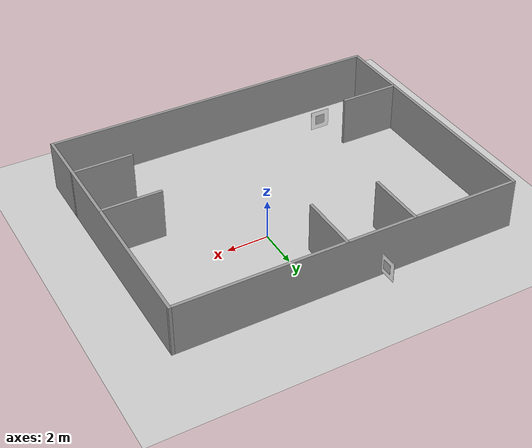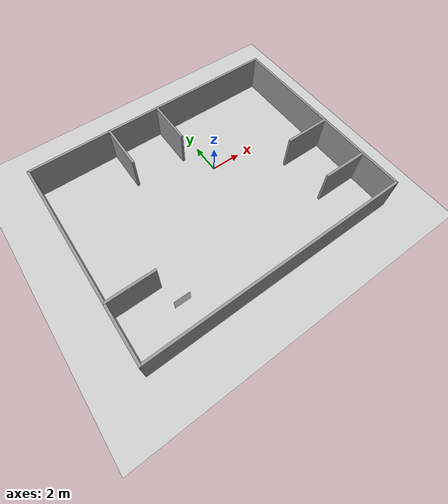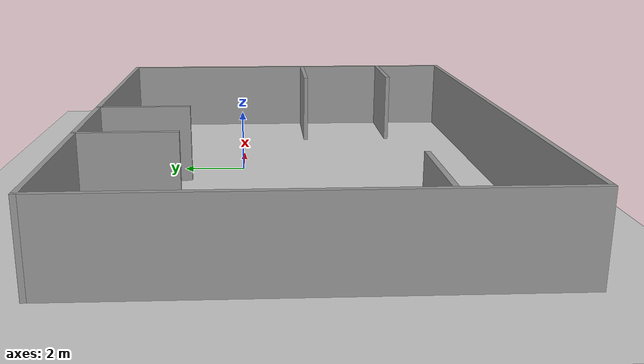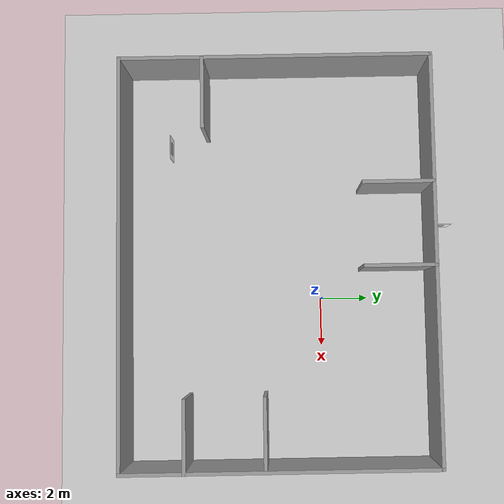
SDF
<sdf version="1.4">
 <world name="default">
  <scene><shadows>0</shadows></scene>
  <physics type="ode">
   <gravity>0 0 -9.81</gravity>
   <ode>
    <solver><type>quick</type><iters>20</iters><sor>1.0</sor></solver>
    <constraints>
     <cfm>0.0</cfm>
     <erp>0.2</erp>
     <contact_max_correcting_vel>100.0</contact_max_correcting_vel>
     <contact_surface_layer>0.0</contact_surface_layer>
    </constraints>
   </ode>
   <real_time_update_rate>200</real_time_update_rate>
   <max_step_size>0.001</max_step_size>
  </physics>
  <include><uri>model://sun</uri></include>
  <include><uri>model://ground_plane</uri><pose>0 0 -0.002 0 0 0</pose></include>
  <include><uri>model://walls3</uri><name>walls3</name></include>
  <include><uri>model://id2</uri><name>id2</name><pose>-6.57 -6.33 0.7 -1.57 0.0 0.0</pose></include>
  <include><uri>model://id3</uri><name>id3</name><pose>-3.04 5.06 0.7 -1.57 0.0 -1.57</pose></include>
 </world>
</sdf>

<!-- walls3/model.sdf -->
<sdf version='1.7'>
  <model name='walls3'>
    <pose>-1.54468 -1.80828 0 0 -0 0</pose>
    <link name='Wall_11'>
      <collision name='Wall_11_Collision'>
        <geometry>
          <box>
            <size>3 0.15 2.5</size>
          </box>
        </geometry>
        <pose>0 0 1.25 0 -0 0</pose>
      </collision>
      <visual name='Wall_11_Visual'>
        <pose>0 0 1.25 0 -0 0</pose>
        <geometry>
          <box>
            <size>3 0.15 2.5</size>
          </box>
        </geometry>
        <material>
          <script>
            <uri>file://media/materials/scripts/gazebo.material</uri>
            <name>Gazebo/Grey</name>
          </script>
          <ambient>1 1 1 1</ambient>
        </material>
        <meta>
          <layer>0</layer>
        </meta>
      </visual>
      <pose>6.97614 -0.6 0 0 -0 3.14159</pose>
    </link>
    <link name='Wall_13'>
      <collision name='Wall_13_Collision'>
        <geometry>
          <box>
            <size>3 0.15 2.5</size>
          </box>
        </geometry>
        <pose>0 0 1.25 0 -0 0</pose>
      </collision>
      <visual name='Wall_13_Visual'>
        <pose>0 0 1.25 0 -0 0</pose>
        <geometry>
          <box>
            <size>3 0.15 2.5</size>
          </box>
        </geometry>
        <material>
          <script>
            <uri>file://media/materials/scripts/gazebo.material</uri>
            <name>Gazebo/Grey</name>
          </script>
          <ambient>1 1 1 1</ambient>
        </material>
        <meta>
          <layer>0</layer>
        </meta>
      </visual>
      <pose>-3.12111 4.98973 0 0 -0 -1.5708</pose>
    </link>
    <link name='Wall_15'>
      <collision name='Wall_15_Collision'>
        <geometry>
          <box>
            <size>3 0.15 2.5</size>
          </box>
        </geometry>
        <pose>0 0 1.25 0 -0 0</pose>
      </collision>
      <visual name='Wall_15_Visual'>
        <pose>0 0 1.25 0 -0 0</pose>
        <geometry>
          <box>
            <size>3 0.15 2.5</size>
          </box>
        </geometry>
        <material>
          <script>
            <uri>file://media/materials/scripts/gazebo.material</uri>
            <name>Gazebo/Grey</name>
          </script>
          <ambient>1 1 1 1</ambient>
        </material>
        <meta>
          <layer>0</layer>
        </meta>
      </visual>
      <pose>0.3 4.98097 0 0 -0 -1.5708</pose>
    </link>
    <link name='Wall_18'>
      <collision name='Wall_18_Collision'>
        <geometry>
          <box>
            <size>17 0.15 2.5</size>
          </box>
        </geometry>
        <pose>0 0 1.25 0 -0 0</pose>
      </collision>
      <visual name='Wall_18_Visual'>
        <pose>0 0 1.25 0 -0 0</pose>
        <geometry>
          <box>
            <size>17 0.15 2.5</size>
          </box>
        </geometry>
        <material>
          <script>
            <uri>file://media/materials/scripts/gazebo.material</uri>
            <name>Gazebo/Grey</name>
          </script>
          <ambient>1 1 1 1</ambient>
        </material>
        <meta>
          <layer>0</layer>
        </meta>
      </visual>
      <pose>-0.001152 6.425 0 0 -0 3.14159</pose>
    </link>
    <link name='Wall_19'>
      <collision name='Wall_19_Collision'>
        <geometry>
          <box>
            <size>13 0.15 2.5</size>
          </box>
        </geometry>
        <pose>0 0 1.25 0 -0 0</pose>
      </collision>
      <visual name='Wall_19_Visual'>
        <pose>0 0 1.25 0 -0 0</pose>
        <geometry>
          <box>
            <size>13 0.15 2.5</size>
          </box>
        </geometry>
        <material>
          <script>
            <uri>file://media/materials/scripts/gazebo.material</uri>
            <name>Gazebo/Grey</name>
          </script>
          <ambient>1 1 1 1</ambient>
        </material>
        <meta>
          <layer>0</layer>
        </meta>
      </visual>
      <pose>-8.42615 0 0 0 -0 -1.5708</pose>
    </link>
    <link name='Wall_3'>
      <collision name='Wall_3_Collision'>
        <geometry>
          <box>
            <size>17 0.15 2.5</size>
          </box>
        </geometry>
        <pose>0 0 1.25 0 -0 0</pose>
      </collision>
      <visual name='Wall_3_Visual'>
        <pose>0 0 1.25 0 -0 0</pose>
        <geometry>
          <box>
            <size>17 0.15 2.5</size>
          </box>
        </geometry>
        <material>
          <script>
            <uri>file://media/materials/scripts/gazebo.material</uri>
            <name>Gazebo/Grey</name>
          </script>
          <ambient>1 1 1 1</ambient>
        </material>
        <meta>
          <layer>0</layer>
        </meta>
      </visual>
      <pose>-0.001152 -6.425 0 0 -0 0</pose>
    </link>
    <link name='Wall_4'>
      <collision name='Wall_4_Collision'>
        <geometry>
          <box>
            <size>13 0.15 2.5</size>
          </box>
        </geometry>
        <pose>0 0 1.25 0 -0 0</pose>
      </collision>
      <visual name='Wall_4_Visual'>
        <pose>0 0 1.25 0 -0 0</pose>
        <geometry>
          <box>
            <size>13 0.15 2.5</size>
          </box>
        </geometry>
        <material>
          <script>
            <uri>file://media/materials/scripts/gazebo.material</uri>
            <name>Gazebo/Grey</name>
          </script>
          <ambient>1 1 1 1</ambient>
        </material>
        <meta>
          <layer>0</layer>
        </meta>
      </visual>
      <pose>8.42385 0 0 0 -0 1.5708</pose>
    </link>
    <link name='Wall_7'>
      <collision name='Wall_7_Collision'>
        <geometry>
          <box>
            <size>3 0.15 2.5</size>
          </box>
        </geometry>
        <pose>0 0 1.25 0 -0 0</pose>
      </collision>
      <visual name='Wall_7_Visual'>
        <pose>0 0 1.25 0 -0 0</pose>
        <geometry>
          <box>
            <size>3 0.15 2.5</size>
          </box>
        </geometry>
        <material>
          <script>
            <uri>file://media/materials/scripts/gazebo.material</uri>
            <name>Gazebo/Grey</name>
          </script>
          <ambient>1 1 1 1</ambient>
        </material>
        <meta>
          <layer>0</layer>
        </meta>
      </visual>
      <pose>-6.97723 -3 0 0 -0 0</pose>
    </link>
    <link name='Wall_9'>
      <collision name='Wall_9_Collision'>
        <geometry>
          <box>
            <size>3 0.15 2.5</size>
          </box>
        </geometry>
        <pose>0 0 1.25 0 -0 0</pose>
      </collision>
      <visual name='Wall_9_Visual'>
        <pose>0 0 1.25 0 -0 0</pose>
        <geometry>
          <box>
            <size>3 0.15 2.5</size>
          </box>
        </geometry>
        <material>
          <script>
            <uri>file://media/materials/scripts/gazebo.material</uri>
            <name>Gazebo/Grey</name>
          </script>
          <ambient>1 1 1 1</ambient>
        </material>
        <meta>
          <layer>0</layer>
        </meta>
      </visual>
      <pose>7.00115 -3.83547 0 0 -0 3.14159</pose>
    </link>
    <static>1</static>
  </model>
</sdf>

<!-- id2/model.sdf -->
<sdf version="1.5">
    <model name="qr_id2">
    <static>true</static>
    <pose>0 0 0 0 0 0</pose>

    <link name="base">
      <collision name="collision">
        <geometry>

          <mesh>
            <uri>model://qr_base/meshes/qr_base.dae</uri>
          </mesh>
        </geometry>
      </collision>
      <visual name="visual">
        <geometry>
          <mesh>
            <uri>model://qr_base/meshes/qr_base.dae</uri>
          </mesh>
        </geometry>
        <cast_shadows>false</cast_shadows>
      </visual>
    </link>

		<joint name="base_marker_joint" type="fixed">
			<parent>base</parent>
			<child>id2_25cm</child>
		</joint>

		<link name="id2">
    	<pose>0 0 0.01 0 0 1.57</pose>
      <collision name="collision">
        <geometry>
          <mesh>
            <uri>model://id2/meshes/id2.dae</uri>
          </mesh>
        </geometry>
      </collision>
      <visual name="visual">
        <geometry>
          <mesh>
            <uri>model://id2/meshes/id2.dae</uri>
          </mesh>
        </geometry>
        <cast_shadows>false</cast_shadows>
      </visual>
    </link>

  </model>
</sdf>

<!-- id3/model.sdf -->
<sdf version="1.5">
    <model name="qr_id3">
    <static>true</static>
    <pose>0 0 0 0 0 0</pose>

    <link name="base">
      <collision name="collision">
        <geometry>

          <mesh>
            <uri>model://qr_base/meshes/qr_base.dae</uri>
          </mesh>
        </geometry>
      </collision>
      <visual name="visual">
        <geometry>
          <mesh>
            <uri>model://qr_base/meshes/qr_base.dae</uri>
          </mesh>
        </geometry>
        <cast_shadows>false</cast_shadows>
      </visual>
    </link>

		<joint name="base_marker_joint" type="fixed">
			<parent>base</parent>
			<child>id3_25cm</child>
		</joint>

		<link name="id3">
    	<pose>0 0 0.01 0 0 1.57</pose>
      <collision name="collision">
        <geometry>
          <mesh>
            <uri>model://id3/meshes/id3.dae</uri>
          </mesh>
        </geometry>
      </collision>
      <visual name="visual">
        <geometry>
          <mesh>
            <uri>model://id3/meshes/id3.dae</uri>
          </mesh>
        </geometry>
        <cast_shadows>false</cast_shadows>
      </visual>
    </link>

  </model>
</sdf>
